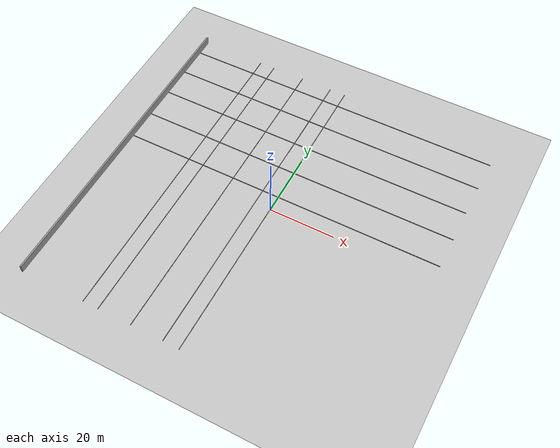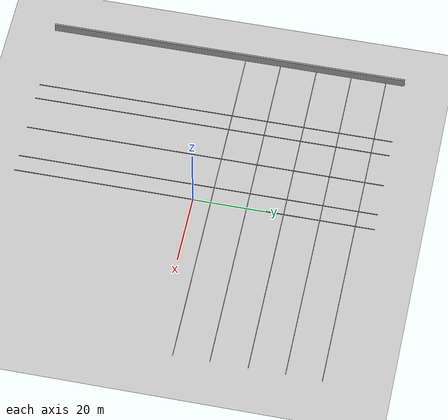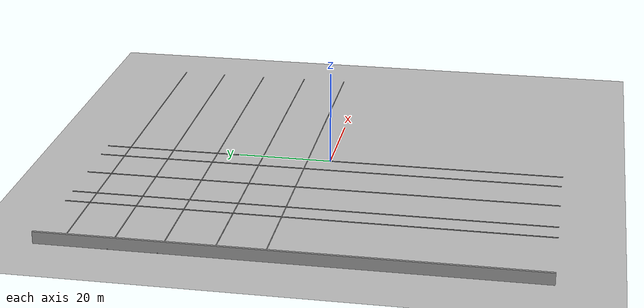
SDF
<sdf version="1.7">
 <world name="default">
  <model name="ground_plane">
   <static>1</static>
   <link name="link">
    <collision name="collision">
     <geometry><plane><normal>0 0 1</normal><size>100 100</size></plane></geometry>
     <surface><friction><ode><mu>100</mu><mu2>50</mu2></ode></friction></surface>
    </collision>
    <visual name="visual">
     <cast_shadows>0</cast_shadows>
     <geometry><plane><normal>0 0 1</normal><size>100 100</size></plane></geometry>
     <material>
      <script><uri>file://media/materials/scripts/gazebo.material</uri><name>Gazebo/Grey</name></script>
     </material>
    </visual>
   </link>
  </model>
  <model name="gridline100m_clone_0_clone_clone">
   <link name="Wall_2">
    <pose>2e-06 -3.05812 0 0 -0 1.571</pose>
    <inertial>
     <mass>1</mass>
     <inertia><ixx>1</ixx><ixy>0</ixy><ixz>0</ixz><iyy>1</iyy><iyz>0</iyz><izz>1</izz></inertia>
    </inertial>
    <visual name="Wall_2_Visual">
     <pose>0 0 0.075 0 -0 0</pose>
     <geometry><box><size>100 0.15 0.15</size></box></geometry>
     <material>
      <script><uri>file://media/materials/scripts/gazebo.material</uri><name>Gazebo/Grey</name></script>
      <ambient>0 0 0 1</ambient>
      <shader type="pixel"><normal_map>__default__</normal_map></shader>
      <diffuse>0.7 0.7 0.7 1</diffuse>
      <specular>0.01 0.01 0.01 1</specular>
      <emissive>0 0 0 1</emissive>
     </material>
     <meta><layer>0</layer></meta>
    </visual>
    <collision name="Wall_2_Collision">
     <pose>0 0 0.075 0 -0 0</pose>
     <geometry><box><size>100 0.15 0.15</size></box></geometry>
     <surface>
      <friction>
       <ode><mu>1</mu><mu2>1</mu2><fdir1>0 0 0</fdir1><slip1>0</slip1><slip2>0</slip2></ode>
       <torsional>
        <coefficient>1</coefficient>
        <patch_radius>0</patch_radius>
        <surface_radius>0</surface_radius>
        <use_patch_radius>1</use_patch_radius>
        <ode><slip>0</slip></ode>
       </torsional>
      </friction>
      <bounce><restitution_coefficient>0</restitution_coefficient><threshold>1e+06</threshold></bounce>
      <contact>
       <collide_without_contact>0</collide_without_contact>
       <collide_without_contact_bitmask>1</collide_without_contact_bitmask>
       <collide_bitmask>1</collide_bitmask>
       <ode>
        <soft_cfm>0</soft_cfm>
        <soft_erp>0.2</soft_erp>
        <kp>1e+13</kp>
        <kd>1</kd>
        <max_vel>0.01</max_vel>
        <min_depth>0</min_depth>
       </ode>
       <bullet>
        <split_impulse>1</split_impulse>
        <split_impulse_penetration_threshold>-0.01</split_impulse_penetration_threshold>
        <soft_cfm>0</soft_cfm>
        <soft_erp>0.2</soft_erp>
        <kp>1e+13</kp>
        <kd>1</kd>
       </bullet>
      </contact>
     </surface>
    </collision>
   </link>
   <static>1</static>
   <pose>-0.105326 3.11667 0 0 -0 0</pose>
  </model>
  <model name="gridline100m_clone_0_clone_clone_0_clone_clone">
   <link name="Wall_2">
    <pose>2e-06 -3.05812 0 0 -0 1.571</pose>
    <inertial>
     <mass>1</mass>
     <inertia><ixx>1</ixx><ixy>0</ixy><ixz>0</ixz><iyy>1</iyy><iyz>0</iyz><izz>1</izz></inertia>
    </inertial>
    <visual name="Wall_2_Visual">
     <pose>0 0 0.075 0 -0 0</pose>
     <geometry><box><size>100 0.15 0.15</size></box></geometry>
     <material>
      <script><uri>file://media/materials/scripts/gazebo.material</uri><name>Gazebo/Grey</name></script>
      <ambient>0 0 0 1</ambient>
      <shader type="pixel"><normal_map>__default__</normal_map></shader>
      <diffuse>0.7 0.7 0.7 1</diffuse>
      <specular>0.01 0.01 0.01 1</specular>
      <emissive>0 0 0 1</emissive>
     </material>
     <meta><layer>0</layer></meta>
    </visual>
    <collision name="Wall_2_Collision">
     <pose>0 0 0.075 0 -0 0</pose>
     <geometry><box><size>100 0.15 0.15</size></box></geometry>
     <surface>
      <friction>
       <ode><mu>1</mu><mu2>1</mu2><fdir1>0 0 0</fdir1><slip1>0</slip1><slip2>0</slip2></ode>
       <torsional>
        <coefficient>1</coefficient>
        <patch_radius>0</patch_radius>
        <surface_radius>0</surface_radius>
        <use_patch_radius>1</use_patch_radius>
        <ode><slip>0</slip></ode>
       </torsional>
      </friction>
      <bounce><restitution_coefficient>0</restitution_coefficient><threshold>1e+06</threshold></bounce>
      <contact>
       <collide_without_contact>0</collide_without_contact>
       <collide_without_contact_bitmask>1</collide_without_contact_bitmask>
       <collide_bitmask>1</collide_bitmask>
       <ode>
        <soft_cfm>0</soft_cfm>
        <soft_erp>0.2</soft_erp>
        <kp>1e+13</kp>
        <kd>1</kd>
        <max_vel>0.01</max_vel>
        <min_depth>0</min_depth>
       </ode>
       <bullet>
        <split_impulse>1</split_impulse>
        <split_impulse_penetration_threshold>-0.01</split_impulse_penetration_threshold>
        <soft_cfm>0</soft_cfm>
        <soft_erp>0.2</soft_erp>
        <kp>1e+13</kp>
        <kd>1</kd>
       </bullet>
      </contact>
     </surface>
    </collision>
   </link>
   <static>1</static>
   <pose>-30.0159 3.12682 0 0 -0 0</pose>
  </model>
  <model name="100mfence_clone_clone">
   <link name="Wall_0">
    <pose>-13.0161 -13.4589 0 0 -0 1.571</pose>
    <inertial>
     <mass>1</mass>
     <inertia><ixx>1</ixx><ixy>0</ixy><ixz>0</ixz><iyy>1</iyy><iyz>0</iyz><izz>1</izz></inertia>
    </inertial>
    <visual name="Wall_0_Visual">
     <pose>0 0 1.25 0 -0 0</pose>
     <geometry><box><size>100 0.5 2.5</size></box></geometry>
     <material>
      <script><uri>file://media/materials/scripts/gazebo.material</uri><name>Gazebo/Grey</name></script>
      <ambient>0.5 0.5 0.5 1</ambient>
      <shader type="pixel"><normal_map>__default__</normal_map></shader>
      <diffuse>0.5 0.5 0.5 1</diffuse>
      <specular>0.5 0.5 0.5 1</specular>
      <emissive>0 0 0 1</emissive>
     </material>
     <meta><layer>0</layer></meta>
    </visual>
    <collision name="Wall_0_Collision">
     <pose>0 0 1.25 0 -0 0</pose>
     <geometry><box><size>100 0.15 2.5</size></box></geometry>
     <surface>
      <friction>
       <ode><mu>1</mu><mu2>1</mu2><fdir1>0 0 0</fdir1><slip1>0</slip1><slip2>0</slip2></ode>
       <torsional>
        <coefficient>1</coefficient>
        <patch_radius>0</patch_radius>
        <surface_radius>0</surface_radius>
        <use_patch_radius>1</use_patch_radius>
        <ode><slip>0</slip></ode>
       </torsional>
      </friction>
      <bounce><restitution_coefficient>0</restitution_coefficient><threshold>1e+06</threshold></bounce>
      <contact>
       <collide_without_contact>0</collide_without_contact>
       <collide_without_contact_bitmask>1</collide_without_contact_bitmask>
       <collide_bitmask>1</collide_bitmask>
       <ode>
        <soft_cfm>0</soft_cfm>
        <soft_erp>0.2</soft_erp>
        <kp>1e+13</kp>
        <kd>1</kd>
        <max_vel>0.01</max_vel>
        <min_depth>0</min_depth>
       </ode>
       <bullet>
        <split_impulse>1</split_impulse>
        <split_impulse_penetration_threshold>-0.01</split_impulse_penetration_threshold>
        <soft_cfm>0</soft_cfm>
        <soft_erp>0.2</soft_erp>
        <kp>1e+13</kp>
        <kd>1</kd>
       </bullet>
      </contact>
     </surface>
    </collision>
   </link>
   <static>1</static>
   <pose>-36.9334 13.4626 0 0 -0 0</pose>
  </model>
  <model name="gridline100m_clone_0_clone_clone_0_clone_clone_clone_clone_clone_0">
   <link name="Wall_2">
    <pose>2e-06 -3.05812 0 0 -0 1.571</pose>
    <inertial>
     <mass>1</mass>
     <inertia><ixx>1</ixx><ixy>0</ixy><ixz>0</ixz><iyy>1</iyy><iyz>0</iyz><izz>1</izz></inertia>
    </inertial>
    <visual name="Wall_2_Visual">
     <pose>0 0 0.075 0 -0 0</pose>
     <geometry><box><size>100 0.15 0.15</size></box></geometry>
     <material>
      <script><uri>file://media/materials/scripts/gazebo.material</uri><name>Gazebo/Grey</name></script>
      <ambient>0 0 0 1</ambient>
      <shader type="pixel"><normal_map>__default__</normal_map></shader>
      <diffuse>0.7 0.7 0.7 1</diffuse>
      <specular>0.01 0.01 0.01 1</specular>
      <emissive>0 0 0 1</emissive>
     </material>
     <meta><layer>0</layer></meta>
    </visual>
    <collision name="Wall_2_Collision">
     <pose>0 0 0.075 0 -0 0</pose>
     <geometry><box><size>100 0.15 0.15</size></box></geometry>
     <surface>
      <friction>
       <ode><mu>1</mu><mu2>1</mu2><fdir1>0 0 0</fdir1><slip1>0</slip1><slip2>0</slip2></ode>
       <torsional>
        <coefficient>1</coefficient>
        <patch_radius>0</patch_radius>
        <surface_radius>0</surface_radius>
        <use_patch_radius>1</use_patch_radius>
        <ode><slip>0</slip></ode>
       </torsional>
      </friction>
      <bounce><restitution_coefficient>0</restitution_coefficient><threshold>1e+06</threshold></bounce>
      <contact>
       <collide_without_contact>0</collide_without_contact>
       <collide_without_contact_bitmask>1</collide_without_contact_bitmask>
       <collide_bitmask>1</collide_bitmask>
       <ode>
        <soft_cfm>0</soft_cfm>
        <soft_erp>0.2</soft_erp>
        <kp>1e+13</kp>
        <kd>1</kd>
        <max_vel>0.01</max_vel>
        <min_depth>0</min_depth>
       </ode>
       <bullet>
        <split_impulse>1</split_impulse>
        <split_impulse_penetration_threshold>-0.01</split_impulse_penetration_threshold>
        <soft_cfm>0</soft_cfm>
        <soft_erp>0.2</soft_erp>
        <kp>1e+13</kp>
        <kd>1</kd>
       </bullet>
      </contact>
     </surface>
    </collision>
   </link>
   <static>1</static>
   <pose>-25.1946 3.11028 0 0 -0 0</pose>
  </model>
  <model name="gridline100m_clone_0_clone_clone_0_clone_clone_clone_clone_clone_1">
   <link name="Wall_2">
    <pose>2e-06 -3.05812 0 0 -0 1.571</pose>
    <inertial>
     <mass>1</mass>
     <inertia><ixx>1</ixx><ixy>0</ixy><ixz>0</ixz><iyy>1</iyy><iyz>0</iyz><izz>1</izz></inertia>
    </inertial>
    <visual name="Wall_2_Visual">
     <pose>0 0 0.075 0 -0 0</pose>
     <geometry><box><size>100 0.15 0.15</size></box></geometry>
     <material>
      <script><uri>file://media/materials/scripts/gazebo.material</uri><name>Gazebo/Grey</name></script>
      <ambient>0 0 0 1</ambient>
      <shader type="pixel"><normal_map>__default__</normal_map></shader>
      <diffuse>0.7 0.7 0.7 1</diffuse>
      <specular>0.01 0.01 0.01 1</specular>
      <emissive>0 0 0 1</emissive>
     </material>
     <meta><layer>0</layer></meta>
    </visual>
    <collision name="Wall_2_Collision">
     <pose>0 0 0.075 0 -0 0</pose>
     <geometry><box><size>100 0.15 0.15</size></box></geometry>
     <surface>
      <friction>
       <ode><mu>1</mu><mu2>1</mu2><fdir1>0 0 0</fdir1><slip1>0</slip1><slip2>0</slip2></ode>
       <torsional>
        <coefficient>1</coefficient>
        <patch_radius>0</patch_radius>
        <surface_radius>0</surface_radius>
        <use_patch_radius>1</use_patch_radius>
        <ode><slip>0</slip></ode>
       </torsional>
      </friction>
      <bounce><restitution_coefficient>0</restitution_coefficient><threshold>1e+06</threshold></bounce>
      <contact>
       <collide_without_contact>0</collide_without_contact>
       <collide_without_contact_bitmask>1</collide_without_contact_bitmask>
       <collide_bitmask>1</collide_bitmask>
       <ode>
        <soft_cfm>0</soft_cfm>
        <soft_erp>0.2</soft_erp>
        <kp>1e+13</kp>
        <kd>1</kd>
        <max_vel>0.01</max_vel>
        <min_depth>0</min_depth>
       </ode>
       <bullet>
        <split_impulse>1</split_impulse>
        <split_impulse_penetration_threshold>-0.01</split_impulse_penetration_threshold>
        <soft_cfm>0</soft_cfm>
        <soft_erp>0.2</soft_erp>
        <kp>1e+13</kp>
        <kd>1</kd>
       </bullet>
      </contact>
     </surface>
    </collision>
   </link>
   <static>1</static>
   <pose>-14.9493 3.16662 0 0 -0 0</pose>
  </model>
  <model name="gridline100m_clone_0_clone_clone_0_clone_clone_clone_clone_clone_2">
   <link name="Wall_2">
    <pose>2e-06 -3.05812 0 0 -0 1.571</pose>
    <inertial>
     <mass>1</mass>
     <inertia><ixx>1</ixx><ixy>0</ixy><ixz>0</ixz><iyy>1</iyy><iyz>0</iyz><izz>1</izz></inertia>
    </inertial>
    <visual name="Wall_2_Visual">
     <pose>0 0 0.075 0 -0 0</pose>
     <geometry><box><size>100 0.15 0.15</size></box></geometry>
     <material>
      <script><uri>file://media/materials/scripts/gazebo.material</uri><name>Gazebo/Grey</name></script>
      <ambient>0 0 0 1</ambient>
      <shader type="pixel"><normal_map>__default__</normal_map></shader>
      <diffuse>0.7 0.7 0.7 1</diffuse>
      <specular>0.01 0.01 0.01 1</specular>
      <emissive>0 0 0 1</emissive>
     </material>
     <meta><layer>0</layer></meta>
    </visual>
    <collision name="Wall_2_Collision">
     <pose>0 0 0.075 0 -0 0</pose>
     <geometry><box><size>100 0.15 0.15</size></box></geometry>
     <surface>
      <friction>
       <ode><mu>1</mu><mu2>1</mu2><fdir1>0 0 0</fdir1><slip1>0</slip1><slip2>0</slip2></ode>
       <torsional>
        <coefficient>1</coefficient>
        <patch_radius>0</patch_radius>
        <surface_radius>0</surface_radius>
        <use_patch_radius>1</use_patch_radius>
        <ode><slip>0</slip></ode>
       </torsional>
      </friction>
      <bounce><restitution_coefficient>0</restitution_coefficient><threshold>1e+06</threshold></bounce>
      <contact>
       <collide_without_contact>0</collide_without_contact>
       <collide_without_contact_bitmask>1</collide_without_contact_bitmask>
       <collide_bitmask>1</collide_bitmask>
       <ode>
        <soft_cfm>0</soft_cfm>
        <soft_erp>0.2</soft_erp>
        <kp>1e+13</kp>
        <kd>1</kd>
        <max_vel>0.01</max_vel>
        <min_depth>0</min_depth>
       </ode>
       <bullet>
        <split_impulse>1</split_impulse>
        <split_impulse_penetration_threshold>-0.01</split_impulse_penetration_threshold>
        <soft_cfm>0</soft_cfm>
        <soft_erp>0.2</soft_erp>
        <kp>1e+13</kp>
        <kd>1</kd>
       </bullet>
      </contact>
     </surface>
    </collision>
   </link>
   <static>1</static>
   <pose>-5.09113 3.1995 0 0 -0 0</pose>
  </model>
  <model name="gridline100m_clone_1_clone_clone_clone_4">
   <pose>-0.128296 7.99348 0 0 -0 0</pose>
   <link name="Wall_2">
    <collision name="Wall_2_Collision">
     <geometry><box><size>100 0.15 0.15</size></box></geometry>
     <pose>0 0 0.075 0 -0 0</pose>
    </collision>
    <visual name="Wall_2_Visual">
     <pose>0 0 0.075 0 -0 0</pose>
     <geometry><box><size>100 0.15 0.15</size></box></geometry>
     <material>
      <script><uri>file://media/materials/scripts/gazebo.material</uri><name>Gazebo/Grey</name></script>
      <ambient>0 0 0 1</ambient>
     </material>
     <meta><layer>0</layer></meta>
    </visual>
    <pose>2e-06 -3.05812 0 0 -0 0</pose>
   </link>
   <static>1</static>
  </model>
  <model name="gridline100m_clone_1_clone_clone_clone_5">
   <pose>-0.131801 17.9375 0 0 -0 0</pose>
   <link name="Wall_2">
    <collision name="Wall_2_Collision">
     <geometry><box><size>100 0.15 0.15</size></box></geometry>
     <pose>0 0 0.075 0 -0 0</pose>
    </collision>
    <visual name="Wall_2_Visual">
     <pose>0 0 0.075 0 -0 0</pose>
     <geometry><box><size>100 0.15 0.15</size></box></geometry>
     <material>
      <script><uri>file://media/materials/scripts/gazebo.material</uri><name>Gazebo/Grey</name></script>
      <ambient>0 0 0 1</ambient>
     </material>
     <meta><layer>0</layer></meta>
    </visual>
    <pose>2e-06 -3.05812 0 0 -0 0</pose>
   </link>
   <static>1</static>
  </model>
  <model name="gridline100m_clone_1_clone_clone_clone_6">
   <pose>-0.251912 28.1503 0 0 -0 0</pose>
   <link name="Wall_2">
    <collision name="Wall_2_Collision">
     <geometry><box><size>100 0.15 0.15</size></box></geometry>
     <pose>0 0 0.075 0 -0 0</pose>
    </collision>
    <visual name="Wall_2_Visual">
     <pose>0 0 0.075 0 -0 0</pose>
     <geometry><box><size>100 0.15 0.15</size></box></geometry>
     <material>
      <script><uri>file://media/materials/scripts/gazebo.material</uri><name>Gazebo/Grey</name></script>
      <ambient>0 0 0 1</ambient>
     </material>
     <meta><layer>0</layer></meta>
    </visual>
    <pose>2e-06 -3.05812 0 0 -0 0</pose>
   </link>
   <static>1</static>
  </model>
  <model name="gridline100m_clone_1_clone_clone_clone_7">
   <pose>-0.246424 38.0876 0 0 -0 0</pose>
   <link name="Wall_2">
    <collision name="Wall_2_Collision">
     <geometry><box><size>100 0.15 0.15</size></box></geometry>
     <pose>0 0 0.075 0 -0 0</pose>
    </collision>
    <visual name="Wall_2_Visual">
     <pose>0 0 0.075 0 -0 0</pose>
     <geometry><box><size>100 0.15 0.15</size></box></geometry>
     <material>
      <script><uri>file://media/materials/scripts/gazebo.material</uri><name>Gazebo/Grey</name></script>
      <ambient>0 0 0 1</ambient>
     </material>
     <meta><layer>0</layer></meta>
    </visual>
    <pose>2e-06 -3.05812 0 0 -0 0</pose>
   </link>
   <static>1</static>
  </model>
  <model name="gridline100m_clone_1_clone_clone_clone_8">
   <pose>-0.055619 47.8828 0 0 -0 0</pose>
   <link name="Wall_2">
    <collision name="Wall_2_Collision">
     <geometry><box><size>100 0.15 0.15</size></box></geometry>
     <pose>0 0 0.075 0 -0 0</pose>
    </collision>
    <visual name="Wall_2_Visual">
     <pose>0 0 0.075 0 -0 0</pose>
     <geometry><box><size>100 0.15 0.15</size></box></geometry>
     <material>
      <script><uri>file://media/materials/scripts/gazebo.material</uri><name>Gazebo/Grey</name></script>
      <ambient>0 0 0 1</ambient>
     </material>
     <meta><layer>0</layer></meta>
    </visual>
    <pose>2e-06 -3.05812 0 0 -0 0</pose>
   </link>
   <static>1</static>
  </model>
 </world>
</sdf>
